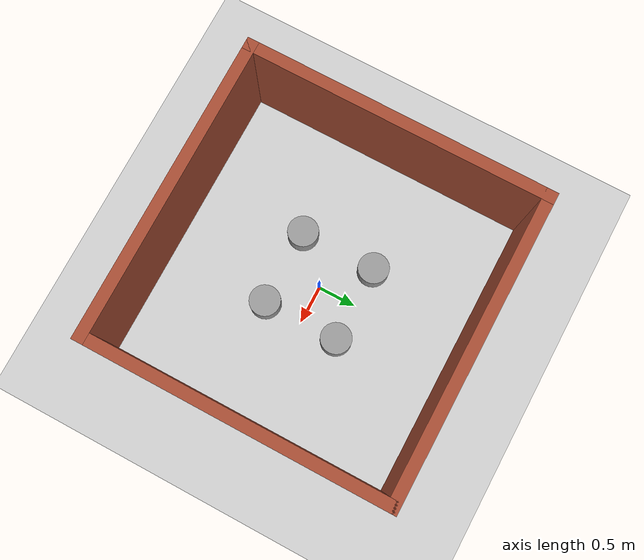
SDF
<sdf version="1.7">
 <world name="default">
  <light name="sun" type="directional">
   <pose>0 0 10 0 -0 0</pose>
   <diffuse>0.8 0.8 0.8 1</diffuse>
   <specular>0.2 0.2 0.2 1</specular>
   <attenuation>
    <range>1000</range>
    <constant>0.9</constant>
    <linear>0.01</linear>
    <quadratic>0.001</quadratic>
   </attenuation>
   <direction>-0.5 0.1 -0.9</direction>
   <spot><inner_angle>0</inner_angle><outer_angle>0</outer_angle><falloff>0</falloff></spot>
  </light>
  <model name="ground_plane">
   <static>1</static>
   <link name="link">
    <collision name="collision">
     <geometry><plane><normal>0 0 1</normal><size>100 100</size></plane></geometry>
     <surface>
      <contact><collide_bitmask>65535</collide_bitmask></contact>
      <friction><ode><mu>100</mu><mu2>50</mu2></ode></friction>
     </surface>
    </collision>
    <visual name="visual">
     <cast_shadows>0</cast_shadows>
     <geometry><plane><normal>0 0 1</normal><size>100 100</size></plane></geometry>
     <material>
      <script><uri>file://media/materials/scripts/gazebo.material</uri><name>Gazebo/Grey</name></script>
     </material>
    </visual>
   </link>
  </model>
  <gravity>0 0 -9.8</gravity>
  <magnetic_field>6e-06 2.3e-05 -4.2e-05</magnetic_field>
  <atmosphere type="adiabatic"/>
  <physics type="ode">
   <max_step_size>0.001</max_step_size>
   <real_time_factor>1</real_time_factor>
   <real_time_update_rate>1000</real_time_update_rate>
  </physics>
  <scene><ambient>0.4 0.4 0.4 1</ambient><background>0.7 0.7 0.7 1</background><shadows>1</shadows></scene>
  <spherical_coordinates>
   <surface_model>EARTH_WGS84</surface_model>
   <latitude_deg>0</latitude_deg>
   <longitude_deg>0</longitude_deg>
   <elevation>0</elevation>
   <heading_deg>0</heading_deg>
  </spherical_coordinates>
  <model name="room">
   <pose>0.456537 0.407623 0 0 -0 0</pose>
   <link name="Wall_10">
    <collision name="Wall_10_Collision">
     <geometry><box><size>4 0.15 1.5</size></box></geometry>
     <pose>0 0 0.75 0 -0 0</pose>
    </collision>
    <visual name="Wall_10_Visual">
     <pose>0 0 0.75 0 -0 0</pose>
     <geometry><box><size>4 0.15 1.5</size></box></geometry>
     <material>
      <script><uri>file://media/materials/scripts/gazebo.material</uri><name>Gazebo/Bricks</name></script>
      <ambient>0.435294 0.796078 0.67451 1</ambient>
     </material>
     <meta><layer>0</layer></meta>
    </visual>
    <pose>-0.4425 -2.3375 0 0 -0 0</pose>
   </link>
   <link name="Wall_11">
    <collision name="Wall_11_Collision">
     <geometry><box><size>4 0.15 1.5</size></box></geometry>
     <pose>0 0 0.75 0 -0 0</pose>
    </collision>
    <visual name="Wall_11_Visual">
     <pose>0 0 0.75 0 -0 0</pose>
     <geometry><box><size>4 0.15 1.5</size></box></geometry>
     <material>
      <script><uri>file://media/materials/scripts/gazebo.material</uri><name>Gazebo/Bricks</name></script>
      <ambient>0.435294 0.796078 0.67451 1</ambient>
     </material>
     <meta><layer>0</layer></meta>
    </visual>
    <pose>1.4825 -0.4125 0 0 -0 1.5708</pose>
   </link>
   <link name="Wall_12">
    <collision name="Wall_12_Collision">
     <geometry><box><size>4 0.15 1.5</size></box></geometry>
     <pose>0 0 0.75 0 -0 0</pose>
    </collision>
    <visual name="Wall_12_Visual">
     <pose>0 0 0.75 0 -0 0</pose>
     <geometry><box><size>4 0.15 1.5</size></box></geometry>
     <material>
      <script><uri>file://media/materials/scripts/gazebo.material</uri><name>Gazebo/Bricks</name></script>
      <ambient>0.435294 0.796078 0.67451 1</ambient>
     </material>
     <meta><layer>0</layer></meta>
    </visual>
    <pose>-0.4425 1.5125 0 0 -0 3.14159</pose>
   </link>
   <link name="Wall_9">
    <collision name="Wall_9_Collision">
     <geometry><box><size>4 0.15 1.5</size></box></geometry>
     <pose>0 0 0.75 0 -0 0</pose>
    </collision>
    <visual name="Wall_9_Visual">
     <pose>0 0 0.75 0 -0 0</pose>
     <geometry><box><size>4 0.15 1.5</size></box></geometry>
     <material>
      <script><uri>file://media/materials/scripts/gazebo.material</uri><name>Gazebo/Bricks</name></script>
      <ambient>0.435294 0.796078 0.67451 1</ambient>
     </material>
     <meta><layer>0</layer></meta>
    </visual>
    <pose>-2.3675 -0.4125 0 0 -0 -1.5708</pose>
   </link>
   <static>1</static>
  </model>
  <model name="unit_cylinder_0">
   <link name="link">
    <inertial>
     <mass>1</mass>
     <inertia><ixx>0.145833</ixx><ixy>0</ixy><ixz>0</ixz><iyy>0.145833</iyy><iyz>0</iyz><izz>0.125</izz></inertia>
    </inertial>
    <visual name="visual">
     <geometry><cylinder><radius>0.2</radius><length>0.5</length></cylinder></geometry>
     <material>
      <script><name>Gazebo/Grey</name><uri>file://media/materials/scripts/gazebo.material</uri></script>
      <shader type="pixel"><normal_map>__default__</normal_map></shader>
      <ambient>0.3 0.3 0.3 1</ambient>
      <diffuse>0.7 0.7 0.7 1</diffuse>
      <specular>0.01 0.01 0.01 1</specular>
      <emissive>0 0 0 1</emissive>
     </material>
    </visual>
    <collision name="collision">
     <geometry><cylinder><radius>0.2</radius><length>0.5</length></cylinder></geometry>
     <surface>
      <friction>
       <ode><mu>1</mu><mu2>1</mu2><fdir1>0 0 0</fdir1><slip1>0</slip1><slip2>0</slip2></ode>
       <torsional>
        <coefficient>1</coefficient>
        <patch_radius>0</patch_radius>
        <surface_radius>0</surface_radius>
        <use_patch_radius>1</use_patch_radius>
        <ode><slip>0</slip></ode>
       </torsional>
      </friction>
      <bounce><restitution_coefficient>0</restitution_coefficient><threshold>1e+06</threshold></bounce>
      <contact>
       <collide_without_contact>0</collide_without_contact>
       <collide_without_contact_bitmask>1</collide_without_contact_bitmask>
       <collide_bitmask>1</collide_bitmask>
       <ode>
        <soft_cfm>0</soft_cfm>
        <soft_erp>0.2</soft_erp>
        <kp>1e+13</kp>
        <kd>1</kd>
        <max_vel>0.01</max_vel>
        <min_depth>0</min_depth>
       </ode>
       <bullet>
        <split_impulse>1</split_impulse>
        <split_impulse_penetration_threshold>-0.01</split_impulse_penetration_threshold>
        <soft_cfm>0</soft_cfm>
        <soft_erp>0.2</soft_erp>
        <kp>1e+13</kp>
        <kd>1</kd>
       </bullet>
      </contact>
     </surface>
    </collision>
   </link>
   <static>0</static>
   <pose>0.5 0.5 0 0 -0 0</pose>
  </model>
  <model name="unit_cylinder_0_0">
   <link name="link">
    <inertial>
     <mass>1</mass>
     <inertia><ixx>0.145833</ixx><ixy>0</ixy><ixz>0</ixz><iyy>0.145833</iyy><iyz>0</iyz><izz>0.125</izz></inertia>
    </inertial>
    <visual name="visual">
     <geometry><cylinder><radius>0.2</radius><length>0.5</length></cylinder></geometry>
     <material>
      <script><name>Gazebo/Grey</name><uri>file://media/materials/scripts/gazebo.material</uri></script>
      <shader type="pixel"><normal_map>__default__</normal_map></shader>
      <ambient>0.3 0.3 0.3 1</ambient>
      <diffuse>0.7 0.7 0.7 1</diffuse>
      <specular>0.01 0.01 0.01 1</specular>
      <emissive>0 0 0 1</emissive>
     </material>
    </visual>
    <collision name="collision">
     <geometry><cylinder><radius>0.2</radius><length>0.5</length></cylinder></geometry>
     <surface>
      <friction>
       <ode><mu>1</mu><mu2>1</mu2><fdir1>0 0 0</fdir1><slip1>0</slip1><slip2>0</slip2></ode>
       <torsional>
        <coefficient>1</coefficient>
        <patch_radius>0</patch_radius>
        <surface_radius>0</surface_radius>
        <use_patch_radius>1</use_patch_radius>
        <ode><slip>0</slip></ode>
       </torsional>
      </friction>
      <bounce><restitution_coefficient>0</restitution_coefficient><threshold>1e+06</threshold></bounce>
      <contact>
       <collide_without_contact>0</collide_without_contact>
       <collide_without_contact_bitmask>1</collide_without_contact_bitmask>
       <collide_bitmask>1</collide_bitmask>
       <ode>
        <soft_cfm>0</soft_cfm>
        <soft_erp>0.2</soft_erp>
        <kp>1e+13</kp>
        <kd>1</kd>
        <max_vel>0.01</max_vel>
        <min_depth>0</min_depth>
       </ode>
       <bullet>
        <split_impulse>1</split_impulse>
        <split_impulse_penetration_threshold>-0.01</split_impulse_penetration_threshold>
        <soft_cfm>0</soft_cfm>
        <soft_erp>0.2</soft_erp>
        <kp>1e+13</kp>
        <kd>1</kd>
       </bullet>
      </contact>
     </surface>
    </collision>
   </link>
   <static>0</static>
   <pose>-0.5 0.5 0 0 -0 0</pose>
  </model>
  <model name="unit_cylinder_0_1">
   <link name="link">
    <inertial>
     <mass>1</mass>
     <inertia><ixx>0.145833</ixx><ixy>0</ixy><ixz>0</ixz><iyy>0.145833</iyy><iyz>0</iyz><izz>0.125</izz></inertia>
    </inertial>
    <visual name="visual">
     <geometry><cylinder><radius>0.2</radius><length>0.5</length></cylinder></geometry>
     <material>
      <script><name>Gazebo/Grey</name><uri>file://media/materials/scripts/gazebo.material</uri></script>
      <shader type="pixel"><normal_map>__default__</normal_map></shader>
      <ambient>0.3 0.3 0.3 1</ambient>
      <diffuse>0.7 0.7 0.7 1</diffuse>
      <specular>0.01 0.01 0.01 1</specular>
      <emissive>0 0 0 1</emissive>
     </material>
    </visual>
    <collision name="collision">
     <geometry><cylinder><radius>0.2</radius><length>0.5</length></cylinder></geometry>
     <surface>
      <friction>
       <ode><mu>1</mu><mu2>1</mu2><fdir1>0 0 0</fdir1><slip1>0</slip1><slip2>0</slip2></ode>
       <torsional>
        <coefficient>1</coefficient>
        <patch_radius>0</patch_radius>
        <surface_radius>0</surface_radius>
        <use_patch_radius>1</use_patch_radius>
        <ode><slip>0</slip></ode>
       </torsional>
      </friction>
      <bounce><restitution_coefficient>0</restitution_coefficient><threshold>1e+06</threshold></bounce>
      <contact>
       <collide_without_contact>0</collide_without_contact>
       <collide_without_contact_bitmask>1</collide_without_contact_bitmask>
       <collide_bitmask>1</collide_bitmask>
       <ode>
        <soft_cfm>0</soft_cfm>
        <soft_erp>0.2</soft_erp>
        <kp>1e+13</kp>
        <kd>1</kd>
        <max_vel>0.01</max_vel>
        <min_depth>0</min_depth>
       </ode>
       <bullet>
        <split_impulse>1</split_impulse>
        <split_impulse_penetration_threshold>-0.01</split_impulse_penetration_threshold>
        <soft_cfm>0</soft_cfm>
        <soft_erp>0.2</soft_erp>
        <kp>1e+13</kp>
        <kd>1</kd>
       </bullet>
      </contact>
     </surface>
    </collision>
   </link>
   <static>0</static>
   <pose>-0.5 -0.5 0 0 -0 0</pose>
  </model>
  <model name="unit_cylinder_0_2">
   <link name="link">
    <inertial>
     <mass>1</mass>
     <inertia><ixx>0.145833</ixx><ixy>0</ixy><ixz>0</ixz><iyy>0.145833</iyy><iyz>0</iyz><izz>0.125</izz></inertia>
    </inertial>
    <visual name="visual">
     <geometry><cylinder><radius>0.2</radius><length>0.5</length></cylinder></geometry>
     <material>
      <script><name>Gazebo/Grey</name><uri>file://media/materials/scripts/gazebo.material</uri></script>
      <shader type="pixel"><normal_map>__default__</normal_map></shader>
      <ambient>0.3 0.3 0.3 1</ambient>
      <diffuse>0.7 0.7 0.7 1</diffuse>
      <specular>0.01 0.01 0.01 1</specular>
      <emissive>0 0 0 1</emissive>
     </material>
    </visual>
    <collision name="collision">
     <geometry><cylinder><radius>0.2</radius><length>0.5</length></cylinder></geometry>
     <surface>
      <friction>
       <ode><mu>1</mu><mu2>1</mu2><fdir1>0 0 0</fdir1><slip1>0</slip1><slip2>0</slip2></ode>
       <torsional>
        <coefficient>1</coefficient>
        <patch_radius>0</patch_radius>
        <surface_radius>0</surface_radius>
        <use_patch_radius>1</use_patch_radius>
        <ode><slip>0</slip></ode>
       </torsional>
      </friction>
      <bounce><restitution_coefficient>0</restitution_coefficient><threshold>1e+06</threshold></bounce>
      <contact>
       <collide_without_contact>0</collide_without_contact>
       <collide_without_contact_bitmask>1</collide_without_contact_bitmask>
       <collide_bitmask>1</collide_bitmask>
       <ode>
        <soft_cfm>0</soft_cfm>
        <soft_erp>0.2</soft_erp>
        <kp>1e+13</kp>
        <kd>1</kd>
        <max_vel>0.01</max_vel>
        <min_depth>0</min_depth>
       </ode>
       <bullet>
        <split_impulse>1</split_impulse>
        <split_impulse_penetration_threshold>-0.01</split_impulse_penetration_threshold>
        <soft_cfm>0</soft_cfm>
        <soft_erp>0.2</soft_erp>
        <kp>1e+13</kp>
        <kd>1</kd>
       </bullet>
      </contact>
     </surface>
    </collision>
   </link>
   <static>0</static>
   <pose>0.5 -0.5 0 0 -0 0</pose>
  </model>
 </world>
</sdf>
